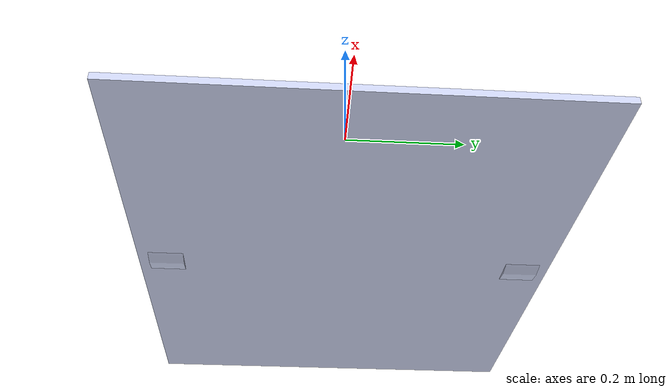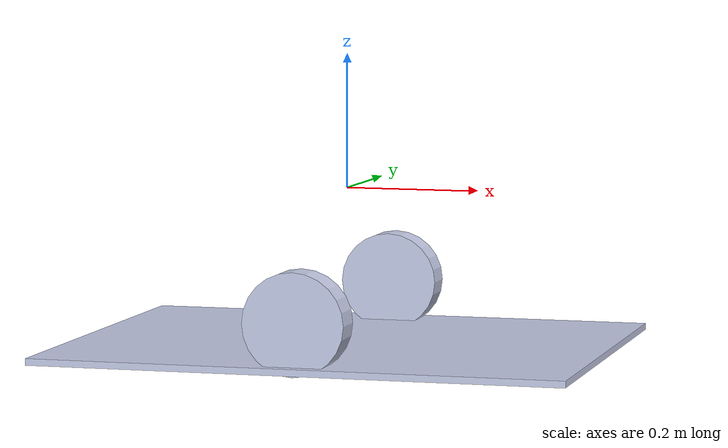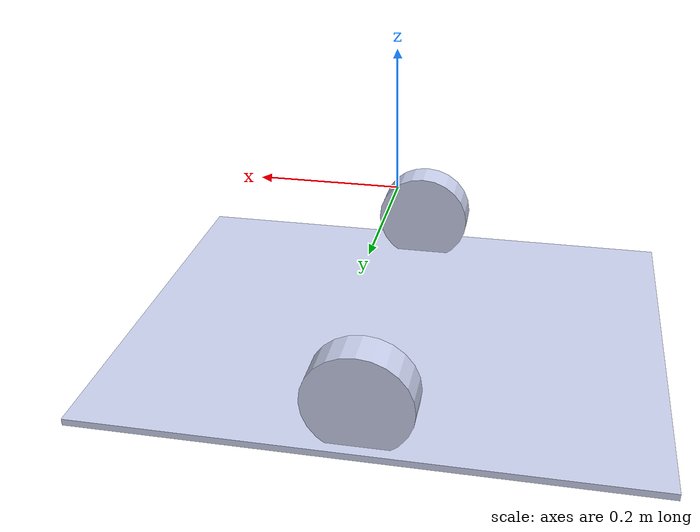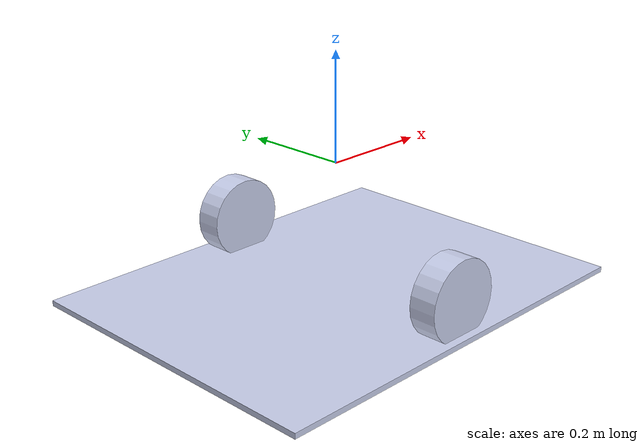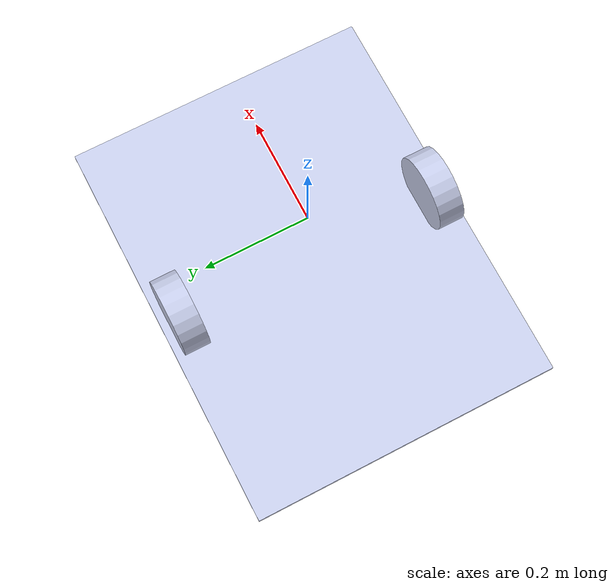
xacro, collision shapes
<?xml version="1.0"?>
<!-- Diagnostic file: base_link with SKID PLATE + drive wheels (no casters).
     Skid plate provides flat ground contact. Use to test drive without swivel complexity. -->
<robot name="amr_ros_dg_test_skids" xmlns:xacro="http://www.ros.org/wiki/xacro">

  <xacro:property name="mesh_scale" value="1 1 1" />
  <xacro:property name="body_color" value="0.792156862745098 0.819607843137255 0.933333333333333 1" />

  <material name="amr_body_grey">
    <color rgba="${body_color}" />
  </material>

  <link name="base_link">
    <inertial>
      <origin xyz="-0.0310943353661127 0.00027531991751642 -0.12487536514683" rpy="0 0 0" />
      <mass value="21.3046134591674" />
      <inertia
        ixx="0.29613665577097" ixy="0.00195367305083866" ixz="4.4307398501902E-05"
        iyy="0.422473357982575" iyz="-2.20145006753063E-07" izz="0.697298060229463" />
    </inertial>
    <visual>
      <origin xyz="0 0 0" rpy="0 0 0" />
      <geometry>
        <mesh filename="package://amr_ros_dg/meshes/base_link.STL" scale="${mesh_scale}" />
      </geometry>
      <material name="amr_body_grey" />
    </visual>
    <collision>
      <origin xyz="0 0 -0.235" rpy="0 0 0" />
      <geometry>
        <box size="0.7939 0.6113 0.01" />
      </geometry>
    </collision>
  </link>

  <xacro:macro name="drive_wheel"
    params="name mesh
            mass cx cy cz ixx ixy ixz iyy iyz izz
            jx jy jz ax ay az
            col_radius col_length col_oy">
    <link name="${name}">
      <inertial>
        <origin xyz="${cx} ${cy} ${cz}" rpy="0 0 0" />
        <mass value="${mass}" />
        <inertia ixx="${ixx}" ixy="${ixy}" ixz="${ixz}" iyy="${iyy}" iyz="${iyz}" izz="${izz}" />
      </inertial>
      <visual>
        <origin xyz="0 0 0" rpy="0 0 0" />
        <geometry>
          <mesh filename="package://amr_ros_dg/meshes/${mesh}" scale="${mesh_scale}" />
        </geometry>
        <material name="amr_body_grey" />
      </visual>
      <collision>
        <origin xyz="0 ${col_oy} 0" rpy="1.5707963 0 0" />
        <geometry>
          <cylinder radius="${col_radius}" length="${col_length}" />
        </geometry>
      </collision>
    </link>
    <joint name="${name}_joint" type="continuous">
      <origin xyz="${jx} ${jy} ${jz}" rpy="0 0 0" />
      <parent link="base_link" />
      <child link="${name}" />
      <axis xyz="${ax} ${ay} ${az}" />
      <limit effort="20.0" velocity="30.0" />
      <dynamics damping="0.0" friction="0.0" />
    </joint>
  </xacro:macro>

  <xacro:drive_wheel name="left_wheel" mesh="left_wheel.STL"
    mass="0.585665991952606"
    cx="-0.000108392816681013" cy="-0.0253615400637083" cz="-0.000239450250214657"
    ixx="0.000928521729613518" ixy="-1.14250082228267E-10" ixz="1.00749289393112E-09"
    iyy="0.00168853495795271" iyz="-2.52341752508342E-10" izz="0.000928564707830947"
    jx="0.00010849" jy="0.2895" jz="-0.16929" ax="0" ay="1" az="0"
    col_radius="0.075" col_length="0.051" col_oy="-0.025" />

  <xacro:drive_wheel name="right_wheel" mesh="right_wheel.STL"
    mass="0.585665991952566"
    cx="0.000186897669876618" cy="0.0253615400637088" cz="-0.000184809864538615"
    ixx="0.000928527905827836" ixy="-1.96980205741672E-10" ixz="-1.51100007177081E-08"
    iyy="0.00168853495795271" iyz="1.94752032949863E-10" izz="0.000928558531615229"
    jx="-0.00018706" jy="-0.2895" jz="-0.16935" ax="0" ay="1" az="0"
    col_radius="0.075" col_length="0.051" col_oy="0.025" />

  <!-- Wheel friction for traction -->
  <gazebo reference="left_wheel">
    <mu1>1.0</mu1>
    <mu2>1.0</mu2>
  </gazebo>
  <gazebo reference="right_wheel">
    <mu1>1.0</mu1>
    <mu2>1.0</mu2>
  </gazebo>

  <!-- Skid plate friction (low, for sliding) -->
  <gazebo reference="base_link">
    <mu1>0.1</mu1>
    <mu2>0.1</mu2>
  </gazebo>

  <ros2_control name="amr_ros_dg_system" type="system">
    <hardware>
      <plugin>gz_ros2_control/GazeboSimSystem</plugin>
    </hardware>
    <joint name="left_wheel_joint">
      <command_interface name="velocity">
        <param name="min">-30.0</param>
        <param name="max">30.0</param>
      </command_interface>
      <state_interface name="velocity" />
      <state_interface name="position" />
    </joint>
    <joint name="right_wheel_joint">
      <command_interface name="velocity">
        <param name="min">-30.0</param>
        <param name="max">30.0</param>
      </command_interface>
      <state_interface name="velocity" />
      <state_interface name="position" />
    </joint>
  </ros2_control>

  <gazebo>
    <plugin filename="gz_ros2_control-system" name="gz_ros2_control::GazeboSimROS2ControlPlugin">
      <!-- Dedicated config, not amr_ros_dg_controllers.yaml: that file's joint_state_broadcaster
           lists the caster joints, which don't exist on this stripped-down test robot. -->
      <parameters>$(find amr_ros_dg)/config/test_no_casters_controllers.yaml</parameters>
    </plugin>
  </gazebo>

</robot>
